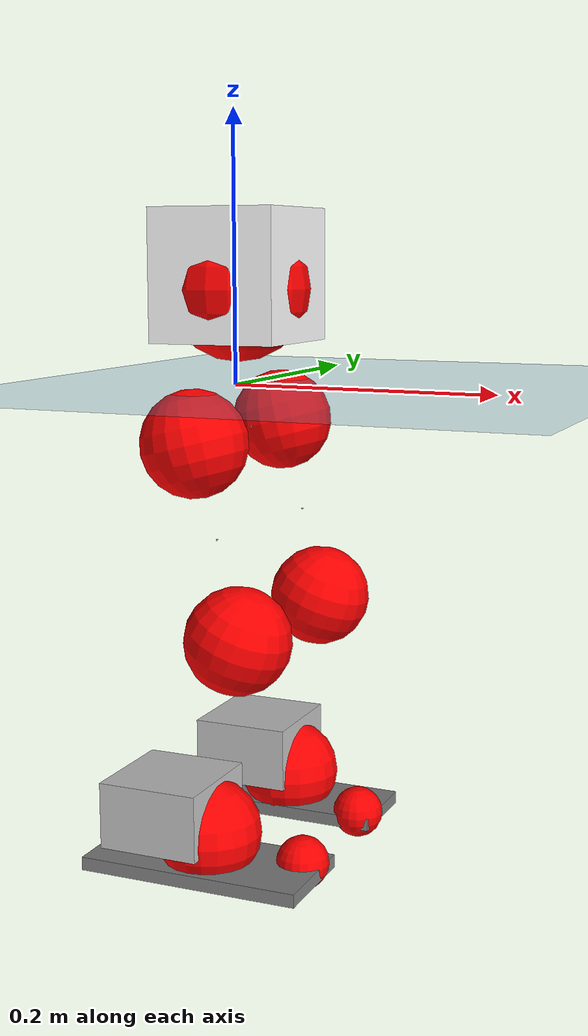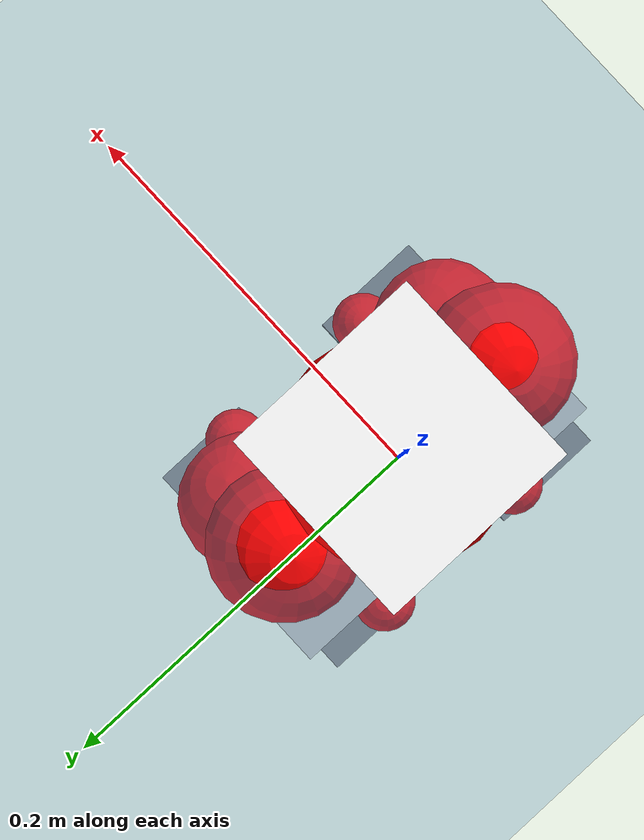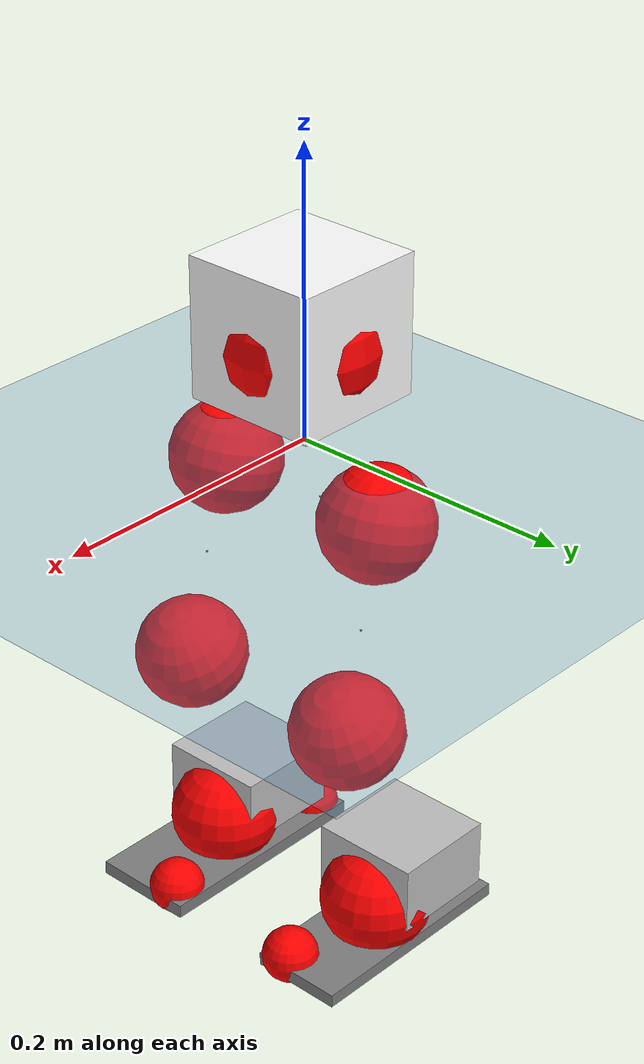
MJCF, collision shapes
<mujoco model="pi_12dof_release_v1">
  <compiler angle="radian" assetdir="assets" balanceinertia="true" inertiafromgeom="false"/>

  <option timestep="0.005" density="1.2" viscosity="2e-05"/>

  <size nkey="1"/>

  <visual>
    <quality shadowsize="8192"/>
    <map shadowclip="0.5"/>
  </visual>

  <default>
    <default class="/">
      <joint armature="0.01" damping="0.01" frictionloss="0.01"/>
      <geom contype="0" conaffinity="0" group="1" solref="-1000 -80"/>
      <site size="0.01 0.005 0.005" group="5"/>
      <general forcelimited="true" biastype="affine" gainprm="20" biasprm="0 -20 -0.5"/>
      <default class="foot">
        <geom size="0.0845 0.036 0.005" type="box" condim="6" group="4" priority="1" friction="0.9 0.2 0.2" solimp="0.015 1 0.005"/>
      </default>
      <default class="reward_collision_sphere">
        <geom group="5" rgba="1 0 0 1"/>
      </default>
    </default>
  </default>

  <asset>
    <texture type="skybox" colorspace="auto" name="//unnamed_texture_0" builtin="gradient" rgb1="0.95 0.95 0.95" rgb2="0.95 0.95 0.95" width="100" height="600"/>
    <texture type="2d" colorspace="auto" name="texplane" builtin="checker" rgb1="0.345 0.575 0.748" rgb2="0.345 0.575 0.748" markrgb="1 1 1" width="512" height="512"/>
    <material name="MatPlane" class="/" texture="texplane" texuniform="true" texrepeat="2 2" specular="0.9"/>
    <mesh name="baselink_1" class="/" file="baselink_1.STL"/>
    <mesh name="r_hip_pitch_link" class="/" file="r_hip_pitch_link.STL"/>
    <mesh name="r_hip_roll_link" class="/" file="r_hip_roll_link.STL"/>
    <mesh name="r_thigh_link" class="/" file="r_thigh_link.STL"/>
    <mesh name="r_calf_link" class="/" file="r_calf_link.STL"/>
    <mesh name="r_ankle_pitch_link" class="/" file="r_ankle_pitch_link.STL"/>
    <mesh name="r_ankle_roll_link" class="/" file="r_ankle_roll_link.STL"/>
    <mesh name="l_hip_pitch_link" class="/" file="l_hip_pitch_link.STL"/>
    <mesh name="l_hip_roll_link" class="/" file="l_hip_roll_link.STL"/>
    <mesh name="l_thigh_link" class="/" file="l_thigh_link.STL"/>
    <mesh name="l_calf_link" class="/" file="l_calf_link.STL"/>
    <mesh name="l_ankle_pitch_link" class="/" file="l_ankle_pitch_link.STL"/>
    <mesh name="l_ankle_roll_link" class="/" file="l_ankle_roll_link.STL"/>
  </asset>

  <worldbody>
    <geom name="floor" class="/" size="100 100 0.125" type="plane" group="0" material="MatPlane"/>
    <light name="toplight_shadow" class="/" pos="0 0 5" dir="0.0990148 0.0990148 -0.990148" type="directional" ambient="0.04 0.04 0.04" diffuse="0.55 0.55 0.55" specular="0.12 0.12 0.12"/>
    <light name="toplight_fill" class="/" pos="0 0 5" dir="0.0990148 0.0990148 -0.990148" type="directional" castshadow="false" ambient="0.04 0.04 0.04" diffuse="0.3 0.3 0.3" specular="0.08 0.08 0.08"/>
    <body name="trunk" pos="0.0027805 0.000207583 7.30812e-05" quat="1 -0.000103217 -0.000413479 -0.000200145">
      <inertial pos="0.00199518 0.00050782 0.040469" quat="0.696051 0.0133224 0.0152492 0.717706" mass="1.96526" diaginertia="0.0116135 0.00496904 0.00426216"/>
      <joint name="//unnamed_joint_0" type="free"/>
      <geom name="//unnamed_geom_1" class="/" type="mesh" density="0" rgba="1 1 1 1" mesh="baselink_1"/>
      <geom name="//unnamed_geom_2" class="/" size="0.0484038 0.0484038 0.0484038" pos="0 0 0.0803952" type="box" rgba="1 1 1 1"/>
      <geom name="//unnamed_geom_3" class="reward_collision_sphere" size="0.0532442" pos="0 0 0.0703458"/>
      <site name="imu" class="/" pos="-0.00377941 0.00444016 -0.0130255" size="0.00968077"/>
      <camera name="track" class="/" pos="0 -1.75671 0" quat="0.707107 0.707107 0 0" mode="trackcom"/>
      <camera name="ego_camera" class="/" pos="0.0765704 0 0.180889" quat="-0.5 -0.5 0.5 0.5"/>
      <body name="r_hip_pitch_link" pos="0.000357867 -0.019968 -0.0345097" quat="0.992039 -1.54725e-05 -0.125927 0.000597781">
        <inertial pos="-0.00161534 -0.0505986 3.02504e-05" quat="-0.0194317 0.70551 -0.0289096 0.707843" mass="0.337993" diaginertia="0.000121255 4.94006e-05 8.54259e-05"/>
        <joint name="r_hip_pitch_joint" class="/" pos="0 0 0" axis="0.0138564 -0.999904 0.00021019" stiffness="0.0024278" range="-1.69596 1.29259" armature="0.00974767" damping="0.0250866" frictionloss="0.00967029"/>
        <geom name="//unnamed_geom_4" class="/" type="mesh" density="0" rgba="0.75294 0.75294 0.75294 1" mesh="r_hip_pitch_link"/>
        <geom name="//unnamed_geom_5" class="/" size="0.000484038 0.000484038 0.000484038" type="box" rgba="0.75294 0.75294 0.75294 1"/>
        <body name="r_hip_roll_link" pos="-0.00226761 -0.0490988 -0.000594924" quat="1 -0.000473141 0.000180145 -0.000273494">
          <inertial pos="-0.00105266 5.83085e-05 -0.0638668" quat="0.706788 -0.0780031 -0.0865776 0.697761" mass="0.354803" diaginertia="0.000374286 0.000145603 0.000131104"/>
          <joint name="r_hip_roll_joint" class="/" pos="0 0 0" axis="-0.999901 -0.012778 0.00594013" range="-0.140529 0.552851" armature="0.00984551" damping="0.000189402" frictionloss="0.00849307"/>
          <geom name="//unnamed_geom_6" class="/" type="mesh" density="0" rgba="0.75294 0.75294 0.75294 1" mesh="r_hip_roll_link"/>
          <geom name="//unnamed_geom_7" class="/" size="0.000484038 0.000484038 0.000484038" type="box" rgba="0.75294 0.75294 0.75294 1"/>
          <geom name="//unnamed_geom_8" class="reward_collision_sphere" size="0.0387231"/>
          <body name="r_thigh_link" pos="0.000793513 -0.00214431 -0.0689605" quat="0.999999 -0.000172211 -0.00110623 5.07524e-05">
            <inertial pos="0.00142446 0.00163075 -0.0475974" quat="0.738712 0.673888 0.0124187 0.0049212" mass="0.107051" diaginertia="0.000137233 5.04885e-05 5.86399e-05"/>
            <joint name="r_thigh_joint" class="/" pos="0 0 0" axis="-0.0100585 0.00700498 -0.999925" range="-0.253639 0.647559" armature="0.0095477" damping="0.00163439" frictionloss="0.00927193"/>
            <geom name="//unnamed_geom_9" class="/" type="mesh" density="0" rgba="0.75294 0.75294 0.75294 1" mesh="r_thigh_link"/>
            <geom name="//unnamed_geom_10" class="/" size="0.000484038 0.000484038 0.000484038" type="box" rgba="0.75294 0.75294 0.75294 1"/>
            <body name="r_calf_link" pos="-0.00237344 -0.000391859 -0.0728989" quat="0.947681 -9.52574e-05 0.319219 -0.000105666">
              <inertial pos="0.00230146 -0.00111846 -0.0728461" quat="0.999897 -0.0112377 -0.00347589 0.0082135" mass="0.753849" diaginertia="0.00402769 0.00183929 0.000185088"/>
              <joint name="r_calf_joint" class="/" pos="0 0 0" axis="0.00713227 -0.99997 0.00308471" range="-1.64386 0.650381" armature="0.0102379" damping="0.0125552" frictionloss="0.0101799"/>
              <geom name="//unnamed_geom_11" class="/" type="mesh" density="0" rgba="0.75294 0.75294 0.75294 1" mesh="r_calf_link"/>
              <geom name="//unnamed_geom_12" class="/" size="0.000484038 0.000484038 0.000484038" type="box" rgba="0.75294 0.75294 0.75294 1"/>
              <geom name="//unnamed_geom_13" class="reward_collision_sphere" size="0.0387231"/>
              <body name="r_ankle_pitch_link" pos="-0.000207476 -0.00113873 -0.138983" quat="0.98007 -4.50732e-05 -0.198654 -1.63073e-05">
                <inertial pos="0.00362439 0.0053639 -0.00121958" quat="0.00226298 0.707145 -0.00221137 0.707062" mass="0.159094" diaginertia="0.000343939 0.000114033 0.000122555"/>
                <joint name="r_ankle_pitch_joint" class="/" pos="0 0 0" axis="-0.00144908 -0.99992 0.0125618" stiffness="0.00412941" range="-1.28916 0.504352" armature="0.0084757" damping="0.0124169" frictionloss="0.00851064"/>
                <geom name="//unnamed_geom_14" class="/" type="mesh" density="0" rgba="0.75294 0.75294 0.75294 1" mesh="r_ankle_pitch_link"/>
                <geom name="//unnamed_geom_15" class="/" size="0.037755 0.0387231 0.0242019" type="box" rgba="0.75294 0.75294 0.75294 1"/>
                <body name="r_ankle_roll_link" pos="0.0787067 0.00403208 0.00285984" quat="0.999999 -0.000963566 -0.000671418 0.000516375">
                  <inertial pos="-0.0221226 -0.00181356 -0.0119247" quat="0.558838 0.435376 0.433789 0.556754" mass="0.459926" diaginertia="0.00129001 0.00056476 0.000303166"/>
                  <joint name="r_ankle_roll_joint" class="/" pos="0 0 0" axis="-0.99993 0.00996571 -0.00642863" range="-0.155442 0.170576" armature="0.0092716" damping="0.0204819" frictionloss="0.0101672"/>
                  <geom name="//unnamed_geom_16" class="/" type="mesh" density="0" rgba="0.75294 0.75294 0.75294 1" mesh="r_ankle_roll_link"/>
                  <geom name="//unnamed_geom_17" class="/" type="mesh" rgba="0.75294 0.75294 0.75294 1" mesh="r_ankle_roll_link"/>
                  <geom name="right_foot" class="foot" size="0.0840581 0.0370681 0.00489856" pos="-0.0520679 0 -0.0442173"/>
                  <geom name="//unnamed_geom_19" class="reward_collision_sphere" size="0.0387231" pos="-0.0510469 0 -0.0200988"/>
                  <geom name="//unnamed_geom_20" class="reward_collision_sphere" size="0.0193615" pos="0.0153141 0.0175671 -0.0401976"/>
                  <geom name="//unnamed_geom_21" class="reward_collision_sphere" size="0.0193615" pos="-0.122513 0.0175671 -0.0401976"/>
                  <site name="right_foot" class="foot" pos="-0.0520679 0 -0.0442173" size="0.00968077"/>
                </body>
              </body>
            </body>
          </body>
        </body>
      </body>
      <body name="l_hip_pitch_link" pos="0.00166144 0.0173025 -0.0330737" quat="0.992243 0.000255164 -0.12431 -0.000177971">
        <inertial pos="0.00354731 0.0451508 -0.000231734" quat="-0.0393709 0.713164 0.0379672 0.69886" mass="0.349947" diaginertia="0.000144154 5.50733e-05 9.99064e-05"/>
        <joint name="l_hip_pitch_joint" class="/" pos="0 0 0" axis="-0.00737167 0.999963 0.00441869" range="-1.3018 1.73104" armature="0.00843103" damping="0.00472683" frictionloss="0.0101873"/>
        <geom name="//unnamed_geom_22" class="/" type="mesh" density="0" rgba="0.75294 0.75294 0.75294 1" mesh="l_hip_pitch_link"/>
        <geom name="//unnamed_geom_23" class="/" size="0.000484038 0.000484038 0.000484038" type="box" rgba="0.75294 0.75294 0.75294 1"/>
        <body name="l_hip_roll_link" pos="0.00257913 0.0500273 3.88647e-05" quat="1 0.000149299 6.68282e-05 0.000148007">
          <inertial pos="-0.00175507 0.00254561 -0.0613109" quat="0.692498 -0.0830156 -0.084364 0.711644" mass="0.358521" diaginertia="0.000370188 0.000149783 0.00013168"/>
          <joint name="l_hip_roll_joint" class="/" pos="0 0 0" axis="-0.999992 -0.00319428 0.00237052" range="-0.482072 0.129918" armature="0.0111099" damping="0" frictionloss="0.00887536"/>
          <geom name="//unnamed_geom_24" class="/" type="mesh" density="0" rgba="0.75294 0.75294 0.75294 1" mesh="l_hip_roll_link"/>
          <geom name="//unnamed_geom_25" class="/" size="0.000484038 0.000484038 0.000484038" type="box" rgba="0.75294 0.75294 0.75294 1"/>
          <geom name="//unnamed_geom_26" class="reward_collision_sphere" size="0.0387231"/>
          <body name="l_thigh_link" pos="-0.00145367 0.00213663 -0.0720344" quat="0.999999 -0.000731366 -0.000778788 -0.000548953">
            <inertial pos="-0.000677634 -0.00158983 -0.0456021" quat="0.67906 0.734063 -0.00431305 0.00306904" mass="0.0986817" diaginertia="0.000137585 4.89936e-05 5.97421e-05"/>
            <joint name="l_thigh_joint" class="/" pos="0 0 0" axis="-0.00346266 0.00146772 -0.999993" stiffness="1.49577e-05" range="-0.654702 0.315803" armature="0.00981197" damping="0" frictionloss="0.00946914"/>
            <geom name="//unnamed_geom_27" class="/" type="mesh" density="0" rgba="0.75294 0.75294 0.75294 1" mesh="l_thigh_link"/>
            <geom name="//unnamed_geom_28" class="/" size="0.000484038 0.000484038 0.000484038" type="box" rgba="0.75294 0.75294 0.75294 1"/>
            <body name="l_calf_link" pos="-0.00315061 0.00190333 -0.0702322" quat="0.947687 -0.000113488 0.3192 -6.13159e-05">
              <inertial pos="0.00281996 0.0038109 -0.0707422" quat="0.999908 0.00285322 -0.0130905 0.00231309" mass="0.748383" diaginertia="0.00404091 0.00190368 0.000185774"/>
              <joint name="l_calf_joint" class="/" pos="0 0 0" axis="-0.000842558 0.999903 -0.0138973" range="-0.602829 1.65707" armature="0.00945008" damping="0.00554984" frictionloss="0.00834711"/>
              <geom name="//unnamed_geom_29" class="/" type="mesh" density="0" rgba="0.75294 0.75294 0.75294 1" mesh="l_calf_link"/>
              <geom name="//unnamed_geom_30" class="/" size="0.000484038 0.000484038 0.000484038" type="box" rgba="0.75294 0.75294 0.75294 1"/>
              <geom name="//unnamed_geom_31" class="reward_collision_sphere" size="0.0387231"/>
              <body name="l_ankle_pitch_link" pos="-1.05673e-05 0.00163648 -0.138506" quat="0.980055 3.81902e-05 -0.198726 9.39915e-06">
                <inertial pos="0.00435554 -0.0007147 -0.000863954" quat="-0.00728874 0.713876 0.00671985 0.700202" mass="0.162111" diaginertia="0.000340854 0.000120418 0.000126866"/>
                <joint name="l_ankle_pitch_joint" class="/" pos="0 0 0" axis="-3.63335e-05 1 0.000141014" range="-0.463946 1.3458" armature="0.0100473" damping="0" frictionloss="0.00916126"/>
                <geom name="//unnamed_geom_32" class="/" type="mesh" density="0" rgba="0.75294 0.75294 0.75294 1" mesh="l_ankle_pitch_link"/>
                <geom name="//unnamed_geom_33" class="/" size="0.037755 0.0387231 0.0242019" type="box" rgba="0.75294 0.75294 0.75294 1"/>
                <body name="l_ankle_roll_link" pos="0.0771352 0.00128172 -0.000423409" quat="1 -0.000133875 -0.000204446 -0.000160584">
                  <inertial pos="-0.0277063 -0.00253797 -0.0119" quat="0.560161 0.430362 0.433802 0.559307" mass="0.489657" diaginertia="0.00122751 0.000561157 0.000291084"/>
                  <joint name="l_ankle_roll_joint" class="/" pos="0 0 0" axis="-0.999997 0.000960131 0.00227516" stiffness="0.0101052" range="-0.173426 0.113217" armature="0.00922023" damping="0.0209722" frictionloss="0.0110279"/>
                  <geom name="//unnamed_geom_34" class="/" type="mesh" density="0" rgba="0.75294 0.75294 0.75294 1" mesh="l_ankle_roll_link"/>
                  <geom name="//unnamed_geom_35" class="/" type="mesh" rgba="0.75294 0.75294 0.75294 1" mesh="l_ankle_roll_link"/>
                  <geom name="left_foot" class="foot" size="0.0811263 0.0326164 0.00473141" pos="-0.0520679 0 -0.0442173"/>
                  <geom name="//unnamed_geom_37" class="reward_collision_sphere" size="0.0387231" pos="-0.0510469 0 -0.0200988"/>
                  <geom name="//unnamed_geom_38" class="reward_collision_sphere" size="0.0193615" pos="0.0153141 -0.0175671 -0.0401976"/>
                  <geom name="//unnamed_geom_39" class="reward_collision_sphere" size="0.0193615" pos="-0.122513 -0.0175671 -0.0401976"/>
                  <site name="left_foot" class="foot" pos="-0.0520679 0 -0.0442173" size="0.00968077"/>
                </body>
              </body>
            </body>
          </body>
        </body>
      </body>
    </body>
  </worldbody>

  <contact>
    <pair class="/" geom1="floor" geom2="right_foot" name="//unnamed_contact_1"/>
    <pair class="/" geom1="floor" geom2="left_foot" name="//unnamed_contact_0"/>
  </contact>

  <actuator>
    <general name="r_hip_pitch_joint" class="/" joint="r_hip_pitch_joint" forcerange="-20.9119 20.9119" gainprm="19.1722" biasprm="0 -19.1722 -0.494668"/>
    <general name="r_hip_roll_joint" class="/" joint="r_hip_roll_joint" forcerange="-22.4505 22.4505" gainprm="19.1722" biasprm="0 -19.1722 -0.494668"/>
    <general name="r_thigh_joint" class="/" joint="r_thigh_joint" forcerange="-20.272 20.272" gainprm="19.1722" biasprm="0 -19.1722 -0.494668"/>
    <general name="r_calf_joint" class="/" joint="r_calf_joint" forcerange="-22.2622 22.2622" gainprm="19.1722" biasprm="0 -19.1722 -0.494668"/>
    <general name="r_ankle_pitch_joint" class="/" joint="r_ankle_pitch_joint" forcerange="-20.9092 20.9092" gainprm="19.1722" biasprm="0 -19.1722 -0.494668"/>
    <general name="r_ankle_roll_joint" class="/" joint="r_ankle_roll_joint" forcerange="-19.8628 19.8628" gainprm="19.1722" biasprm="0 -19.1722 -0.494668"/>
    <general name="l_hip_pitch_joint" class="/" joint="l_hip_pitch_joint" forcerange="-20.2985 20.2985" gainprm="19.1722" biasprm="0 -19.1722 -0.494668"/>
    <general name="l_hip_roll_joint" class="/" joint="l_hip_roll_joint" forcerange="-18.2481 18.2481" gainprm="19.1722" biasprm="0 -19.1722 -0.494668"/>
    <general name="l_thigh_joint" class="/" joint="l_thigh_joint" forcerange="-20.7353 20.7353" gainprm="19.1722" biasprm="0 -19.1722 -0.494668"/>
    <general name="l_calf_joint" class="/" joint="l_calf_joint" forcerange="-20.475 20.475" gainprm="19.1722" biasprm="0 -19.1722 -0.494668"/>
    <general name="l_ankle_pitch_joint" class="/" joint="l_ankle_pitch_joint" forcerange="-19.774 19.774" gainprm="19.1722" biasprm="0 -19.1722 -0.494668"/>
    <general name="l_ankle_roll_joint" class="/" joint="l_ankle_roll_joint" forcerange="-21.673 21.673" gainprm="19.1722" biasprm="0 -19.1722 -0.494668"/>
  </actuator>

  <sensor>
    <gyro site="imu" name="imu_angular_velocity"/>
    <velocimeter site="imu" name="imu_linear_velocity"/>
    <framelinvel objtype="site" objname="left_foot" name="left_foot_global_linear_velocity"/>
    <framelinvel objtype="site" objname="right_foot" name="right_foot_global_linear_velocity"/>
  </sensor>

  <keyframe>
    <key name="home" qpos="0 0 0.291 1 0 0 0 0.4 0 0 -0.8 0.4 0 -0.4 0 0 0.8 -0.4 0"/>
  </keyframe>
</mujoco>
